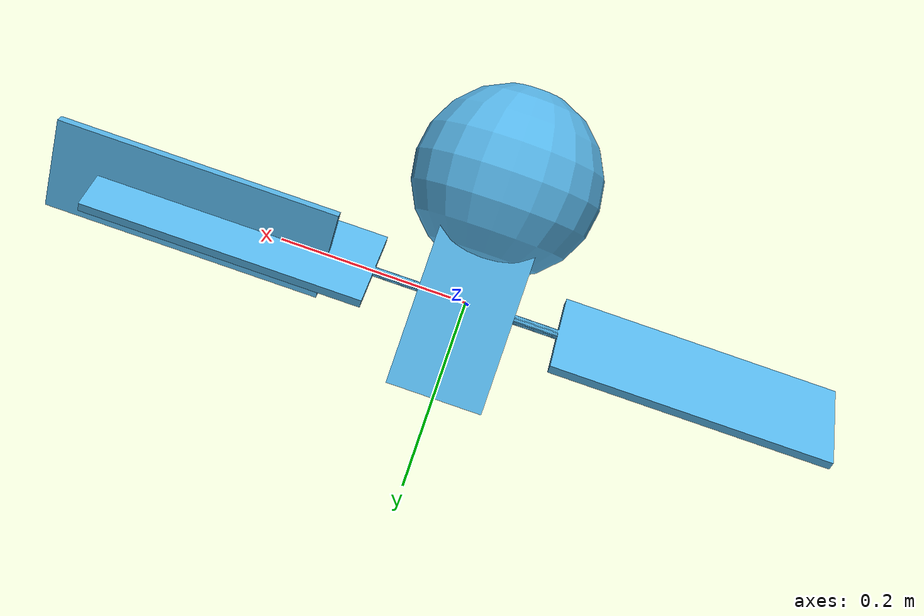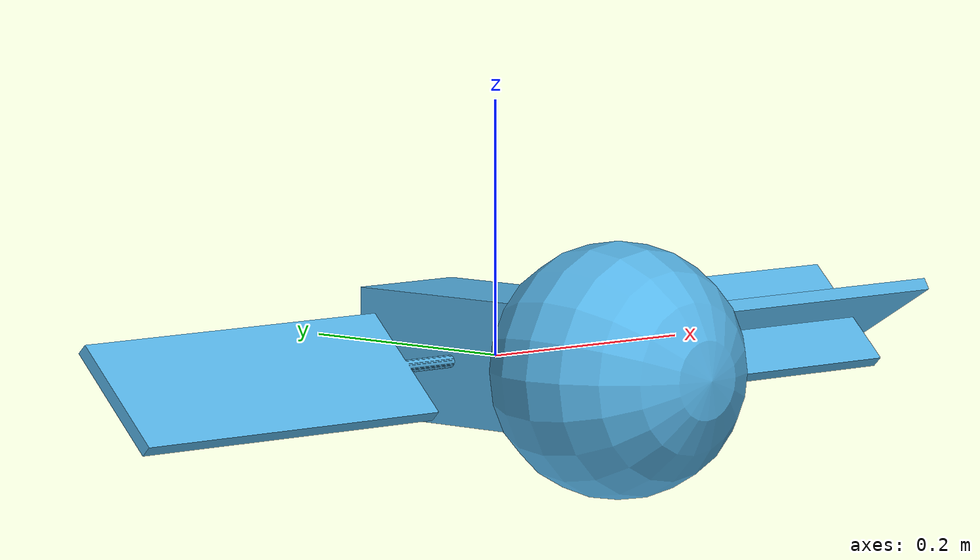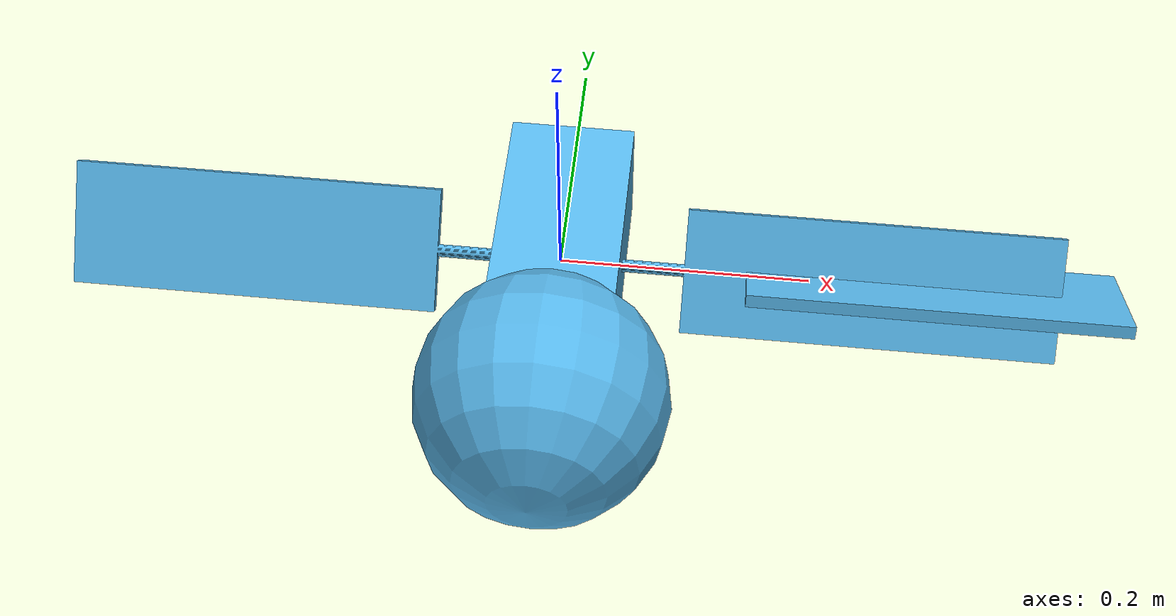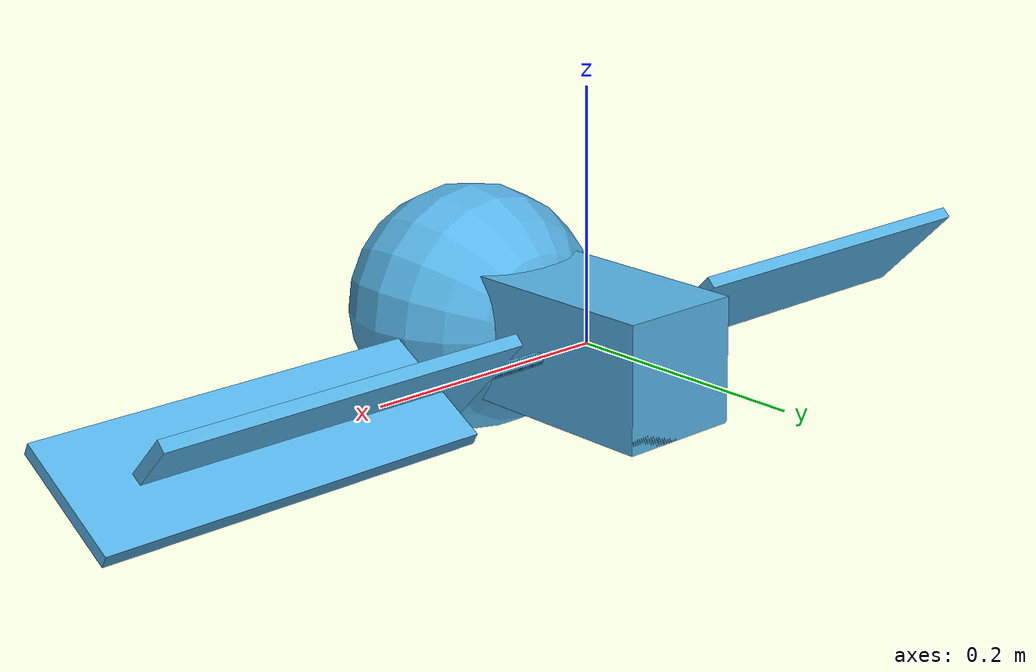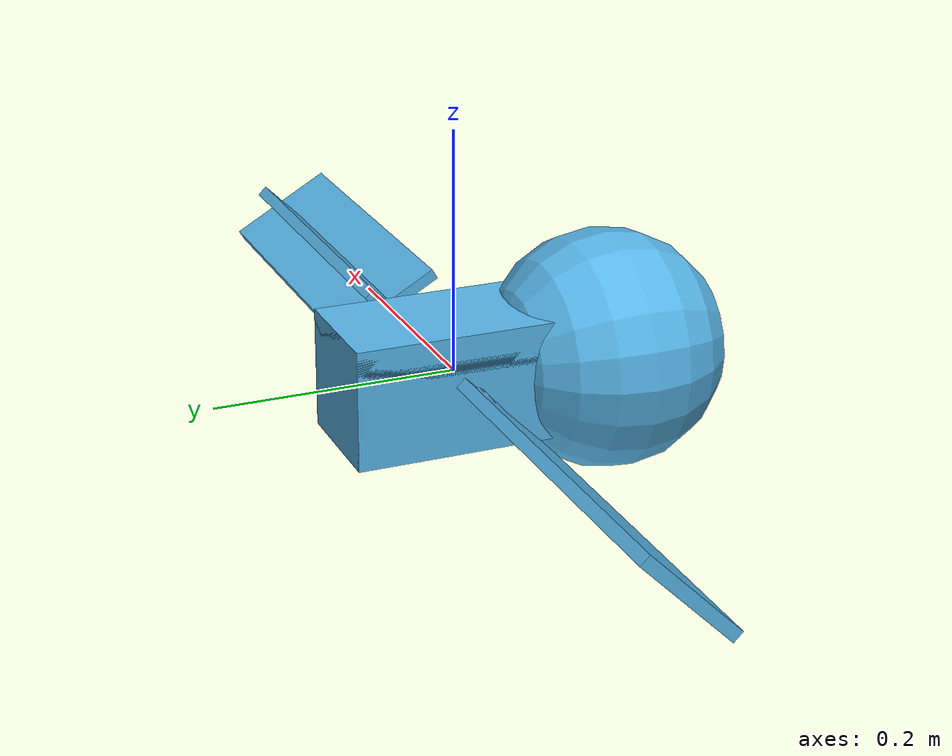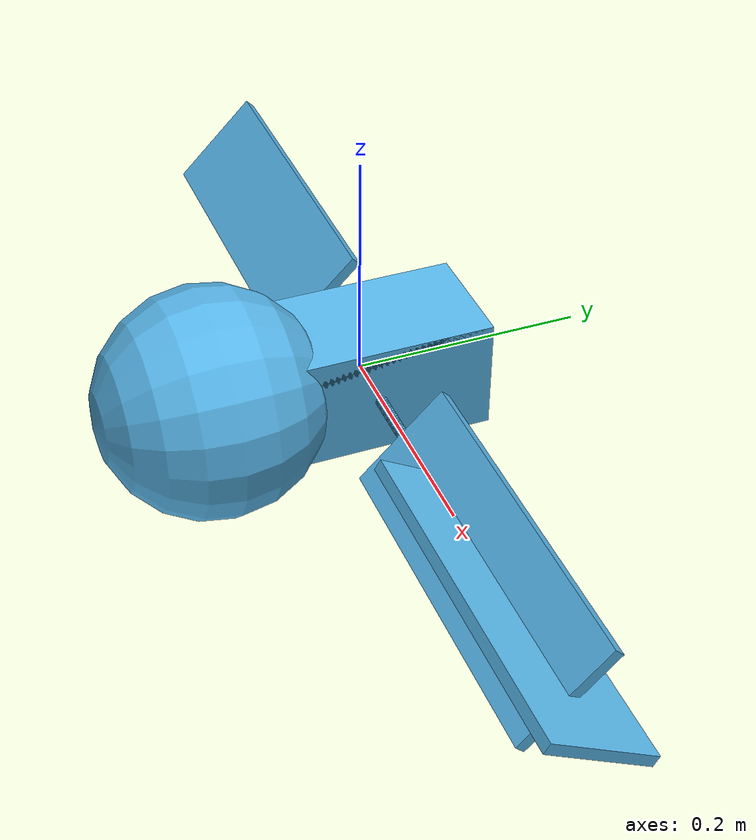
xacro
<?xml version='1.0'?>
<robot xmlns:xacro="http://www.ros.org/wiki/xacro" name="cubesat">
    <xacro:include filename="dimensions.xacro"/>
    <xacro:include filename="macros.xacro"/>

    <!-- World -->
    <link name="estimated_pose"></link>

    <!-- Body -->
    <link name="target_body">
        <collision name="body_collision">
            <geometry>
                <box size="${cube_dim}"/>
            </geometry>
        </collision>

        <visual name="body_visual_cube">
            <geometry>
                <box size="${cube_dim}"/>
            </geometry>
        </visual>

        <visual name="body_visual_arm">
            <origin xyz="0 0 0" rpy="1.5708 0 0"/>
            <geometry>
                <cylinder radius="${panel_z/2}" length="${arm*2 + cube_y*U}"/>
            </geometry>
        </visual>

        <visual name="body_visual_panel_right">
            <origin xyz="0 ${(cube_y*U + panel_y)/2 + arm} 0" rpy="0 1.0472 0"/>
            <geometry>
                <box size="${panel_dim}"/>
            </geometry>
        </visual>

        <visual name="sphere">
            <origin xyz="0 0 ${cube_z/15}" rpy="0 0 0"/>
            <geometry>
                <sphere radius="${cube_z / 20}"/>
            </geometry>
        </visual>

        <visual name="body_visual_cube">
            <origin rpy="0 0 ${pi/2}"/>
            <geometry>
                <mesh filename="/home/frank20a/dev-ws/data/models/simple_targets/ship2/cubesat.dae"/>
            </geometry>
        </visual>

        <xacro:inertial_box mass="1.25" x="${cube_x*U}" y="${cube_y*U}" z="${cube_z*U}">
            <origin xyz="0 0 0"/>
        </xacro:inertial_box>
    </link>

    <joint name="body_fix" type="fixed">
        <origin rpy="${pi/2} ${pi/2} 0"/>
        <parent link="estimated_pose"/>
        <child link="target_body"/>
    </joint>

    <xacro:include filename="gazebo.xacro"/>
</robot>

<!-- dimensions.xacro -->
<robot xmlns:xacro="http://www.ros.org/wiki/xacro">

    <!-- Body -->
    <xacro:property name="U" value="0.1"/>
    <xacro:property name="cube_x" value="1"/>
    <xacro:property name="cube_y" value="1"/>
    <xacro:property name="cube_z" value="2"/>
    <xacro:property name="cube_dim" value="${cube_x * U} ${cube_y * U} ${cube_z * U}"/>

    <!-- Flaps -->
    <xacro:property name="arm" value="${U}"/>
    <xacro:property name="panel_z" value="0.01"/>
    <xacro:property name="panel_x" value="0.1"/>
    <xacro:property name="panel_y" value="0.3"/>
    <xacro:property name="panel_dim" value="${panel_x} ${panel_y} ${panel_z}"/>

</robot>

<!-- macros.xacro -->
<robot xmlns:xacro="http://www.ros.org/wiki/xacro">

    <!-- Inertial -->
    <xacro:macro name="inertial_sphere" params="mass radius *origin">
        <inertial>
            <xacro:insert_block name="origin"/>
            <mass value="${mass}" />
            <inertia ixx="${(2/5) * mass * (radius*radius)}" ixy="0.0" ixz="0.0"
                    iyy="${(2/5) * mass * (radius*radius)}" iyz="0.0"
                    izz="${(2/5) * mass * (radius*radius)}" />
        </inertial>
    </xacro:macro>

    <xacro:macro name="inertial_box" params="mass x y z *origin">
        <inertial>
            <xacro:insert_block name="origin"/>
            <mass value="${mass}" />
            <inertia ixx="${(1/12) * mass * (y*y+z*z)}" ixy="0.0" ixz="0.0"
                    iyy="${(1/12) * mass * (x*x+z*z)}" iyz="0.0"
                    izz="${(1/12) * mass * (x*x+y*y)}" />
        </inertial>
    </xacro:macro>

    <xacro:macro name="inertial_cylinder" params="mass length radius *origin">
        <inertial>
            <xacro:insert_block name="origin"/>
            <mass value="${mass}" />
            <inertia ixx="${(1/12) * mass * (3*radius*radius + length*length)}" ixy="0.0" ixz="0.0"
                    iyy="${(1/12) * mass * (3*radius*radius + length*length)}" iyz="0.0"
                    izz="${(1/2) * mass * (radius*radius)}" />
        </inertial>
    </xacro:macro>

</robot>
